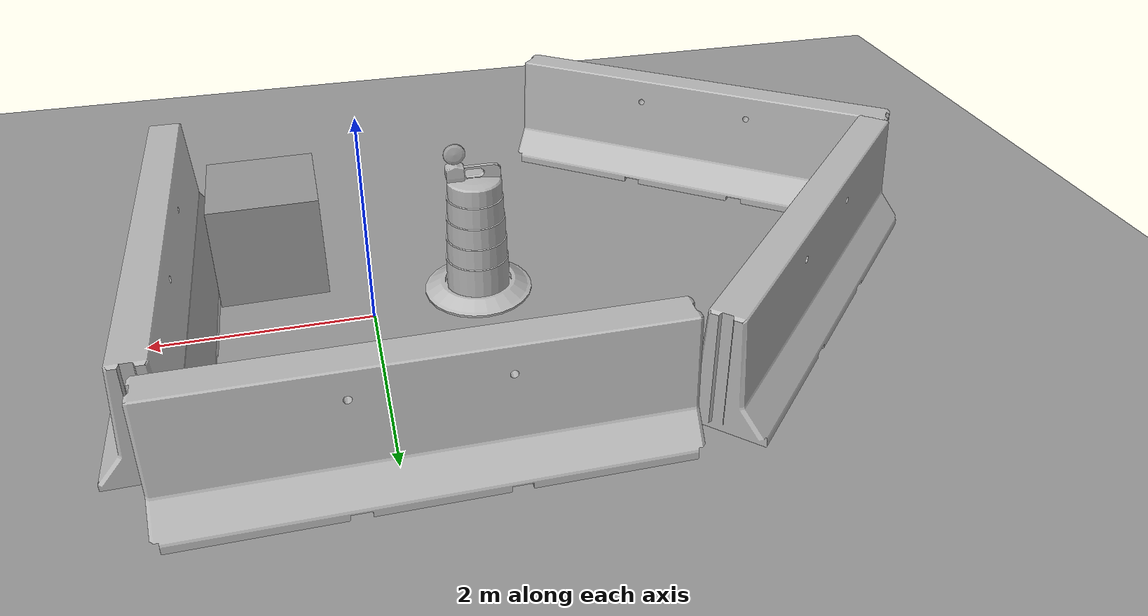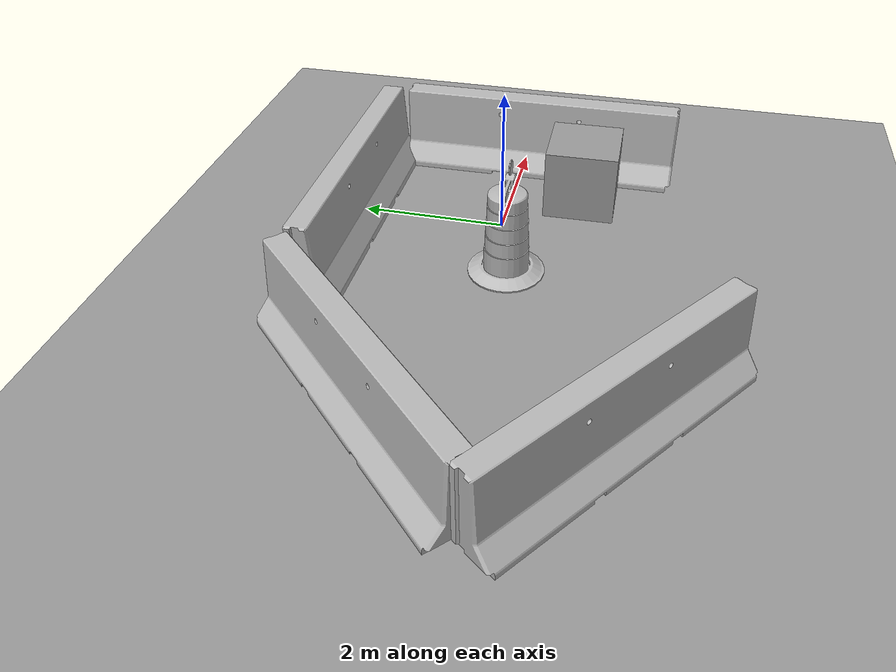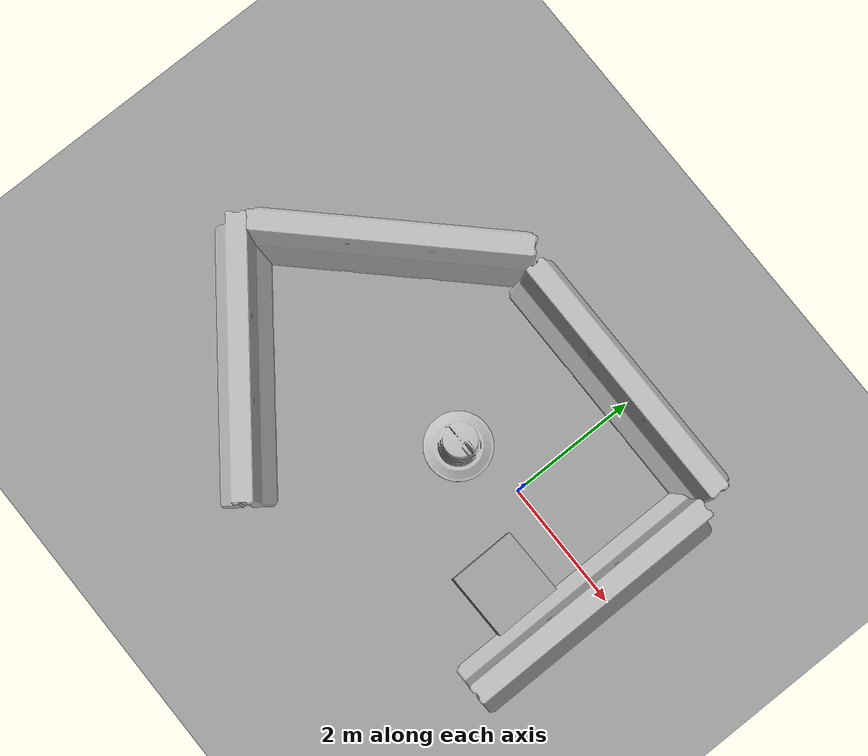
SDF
<sdf version="1.4">
 <world name="default">
  <model name="ground_plane_0">
   <static>1</static>
   <link name="link">
    <collision name="collision">
     <geometry><plane><normal>0 0 1</normal><size>100 100</size></plane></geometry>
     <surface><friction><ode><mu>100</mu><mu2>50</mu2></ode></friction></surface>
    </collision>
    <visual name="visual">
     <cast_shadows>0</cast_shadows>
     <geometry><plane><normal>0 0 1</normal><size>100 100</size></plane></geometry>
     <material>
      <script><uri>file://media/materials/scripts/gazebo.material</uri><name>Gazebo/Grey</name></script>
     </material>
    </visual>
    <velocity_decay><linear>0</linear><angular>0</angular></velocity_decay>
   </link>
   <pose>0.497681 0 0 0 -0 0</pose>
  </model>
  <model name="jersey_barrier_1">
   <static>1</static>
   <link name="link">
    <visual name="visual">
     <geometry><mesh><uri>model://jersey_barrier/meshes/jersey_barrier.dae</uri></mesh></geometry>
    </visual>
    <collision name="upright">
     <pose>0 0 0.5715 0 -0 0</pose>
     <geometry><box><size>4.06542 0.3063 1.143</size></box></geometry>
    </collision>
    <collision name="base">
     <pose>0 0 0.032258 0 -0 0</pose>
     <geometry><box><size>4.06542 0.8107 0.064516</size></box></geometry>
    </collision>
    <collision name="base2">
     <pose>0 0 0.1 0 -0 0</pose>
     <geometry><box><size>4.06542 0.65 0.1</size></box></geometry>
    </collision>
    <collision name="base3">
     <pose>0 0 0.2 0 -0 0</pose>
     <geometry><box><size>4.06542 0.5 0.1</size></box></geometry>
    </collision>
    <collision name="left-angle">
     <pose>0 -0.224 0.2401 0.9 -0 0</pose>
     <geometry><box><size>4.06542 0.5 0.064516</size></box></geometry>
    </collision>
    <collision name="right-angle">
     <pose>0 0.224 0.2401 -0.9 0 0</pose>
     <geometry><box><size>4.06542 0.5 0.064516</size></box></geometry>
    </collision>
    <velocity_decay><linear>0</linear><angular>0</angular></velocity_decay>
   </link>
   <pose>-0.265608 2.06856 0 0 -0 0</pose>
  </model>
  <model name="jersey_barrier_3">
   <static>1</static>
   <link name="link">
    <visual name="visual">
     <geometry><mesh><uri>model://jersey_barrier/meshes/jersey_barrier.dae</uri></mesh></geometry>
    </visual>
    <collision name="upright">
     <pose>0 0 0.5715 0 -0 0</pose>
     <geometry><box><size>4.06542 0.3063 1.143</size></box></geometry>
    </collision>
    <collision name="base">
     <pose>0 0 0.032258 0 -0 0</pose>
     <geometry><box><size>4.06542 0.8107 0.064516</size></box></geometry>
    </collision>
    <collision name="base2">
     <pose>0 0 0.1 0 -0 0</pose>
     <geometry><box><size>4.06542 0.65 0.1</size></box></geometry>
    </collision>
    <collision name="base3">
     <pose>0 0 0.2 0 -0 0</pose>
     <geometry><box><size>4.06542 0.5 0.1</size></box></geometry>
    </collision>
    <collision name="left-angle">
     <pose>0 -0.224 0.2401 0.9 -0 0</pose>
     <geometry><box><size>4.06542 0.5 0.064516</size></box></geometry>
    </collision>
    <collision name="right-angle">
     <pose>0 0.224 0.2401 -0.9 0 0</pose>
     <geometry><box><size>4.06542 0.5 0.064516</size></box></geometry>
    </collision>
    <velocity_decay><linear>0</linear><angular>0</angular></velocity_decay>
   </link>
   <pose>1.79802 -0.230678 0 0 -0 1.57742</pose>
  </model>
  <model name="jersey_barrier_5">
   <static>1</static>
   <link name="link">
    <visual name="visual">
     <geometry><mesh><uri>model://jersey_barrier/meshes/jersey_barrier.dae</uri></mesh></geometry>
    </visual>
    <collision name="upright">
     <pose>0 0 0.5715 0 -0 0</pose>
     <geometry><box><size>4.06542 0.3063 1.143</size></box></geometry>
    </collision>
    <collision name="base">
     <pose>0 0 0.032258 0 -0 0</pose>
     <geometry><box><size>4.06542 0.8107 0.064516</size></box></geometry>
    </collision>
    <collision name="base2">
     <pose>0 0 0.1 0 -0 0</pose>
     <geometry><box><size>4.06542 0.65 0.1</size></box></geometry>
    </collision>
    <collision name="base3">
     <pose>0 0 0.2 0 -0 0</pose>
     <geometry><box><size>4.06542 0.5 0.1</size></box></geometry>
    </collision>
    <collision name="left-angle">
     <pose>0 -0.224 0.2401 0.9 -0 0</pose>
     <geometry><box><size>4.06542 0.5 0.064516</size></box></geometry>
    </collision>
    <collision name="right-angle">
     <pose>0 0.224 0.2401 -0.9 0 0</pose>
     <geometry><box><size>4.06542 0.5 0.064516</size></box></geometry>
    </collision>
    <velocity_decay><linear>0</linear><angular>0</angular></velocity_decay>
   </link>
   <pose>-3.86395 0.784129 0 0 -0 0.804225</pose>
  </model>
  <model name="jersey_barrier_6">
   <static>1</static>
   <link name="link">
    <visual name="visual">
     <geometry><mesh><uri>model://jersey_barrier/meshes/jersey_barrier.dae</uri></mesh></geometry>
    </visual>
    <collision name="upright">
     <pose>0 0 0.5715 0 -0 0</pose>
     <geometry><box><size>4.06542 0.3063 1.143</size></box></geometry>
    </collision>
    <collision name="base">
     <pose>0 0 0.032258 0 -0 0</pose>
     <geometry><box><size>4.06542 0.8107 0.064516</size></box></geometry>
    </collision>
    <collision name="base2">
     <pose>0 0 0.1 0 -0 0</pose>
     <geometry><box><size>4.06542 0.65 0.1</size></box></geometry>
    </collision>
    <collision name="base3">
     <pose>0 0 0.2 0 -0 0</pose>
     <geometry><box><size>4.06542 0.5 0.1</size></box></geometry>
    </collision>
    <collision name="left-angle">
     <pose>0 -0.224 0.2401 0.9 -0 0</pose>
     <geometry><box><size>4.06542 0.5 0.064516</size></box></geometry>
    </collision>
    <collision name="right-angle">
     <pose>0 0.224 0.2401 -0.9 0 0</pose>
     <geometry><box><size>4.06542 0.5 0.064516</size></box></geometry>
    </collision>
    <velocity_decay><linear>0</linear><angular>0</angular></velocity_decay>
   </link>
   <pose>-3.81436 -1.91342 0 0 0 -0.641466</pose>
  </model>
  <model name="Construction Barrel">
   <link name="link">
    <inertial>
     <pose>0 0 0.4 0 -0 0</pose>
     <mass>500</mass>
     <inertia><ixx>51.2096</ixx><iyy>51.2096</iyy><izz>25</izz><ixy>0</ixy><ixz>0</ixz><iyz>0</iyz></inertia>
    </inertial>
    <collision name="collision">
     <geometry><mesh><uri>model://construction_barrel/meshes/construction_barrel.dae</uri></mesh></geometry>
    </collision>
    <visual name="visual">
     <geometry><mesh><uri>model://construction_barrel/meshes/construction_barrel.dae</uri></mesh></geometry>
    </visual>
    <velocity_decay><linear>0</linear><angular>0</angular></velocity_decay>
   </link>
   <pose>-1.01725 -0.255288 -9.1e-05 0.00031 0.000179 0.000298</pose>
   <static>0</static>
  </model>
  <model name="unit_box_2">
   <pose>0.888609 -1.00731 0.5 0 -0 0.01817</pose>
   <link name="link">
    <inertial>
     <mass>1</mass>
     <inertia><ixx>1</ixx><ixy>0</ixy><ixz>0</ixz><iyy>1</iyy><iyz>0</iyz><izz>1</izz></inertia>
    </inertial>
    <collision name="collision"><geometry><box><size>1 1 1</size></box></geometry></collision>
    <visual name="visual">
     <geometry><box><size>1 1 1</size></box></geometry>
     <material>
      <script><uri>file://media/materials/scripts/gazebo.material</uri><name>Gazebo/Grey</name></script>
     </material>
    </visual>
    <velocity_decay><linear>0</linear><angular>0</angular></velocity_decay>
   </link>
   <static>0</static>
  </model>
 </world>
</sdf>
